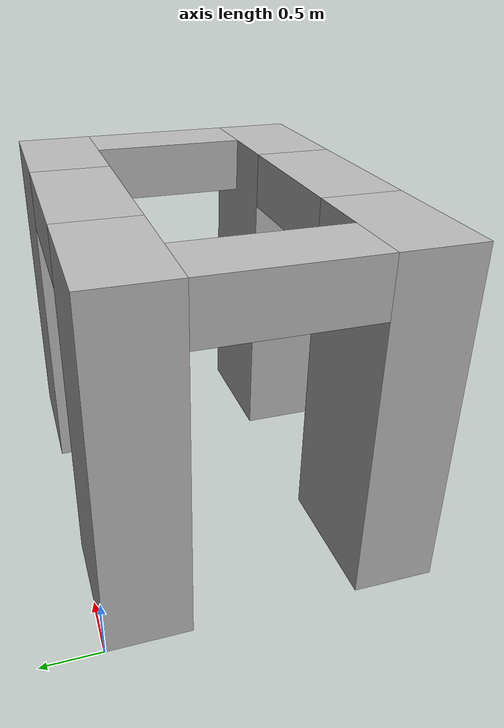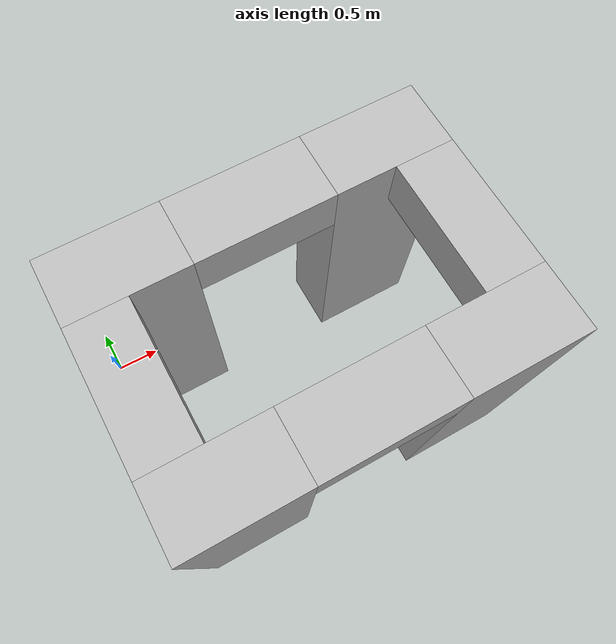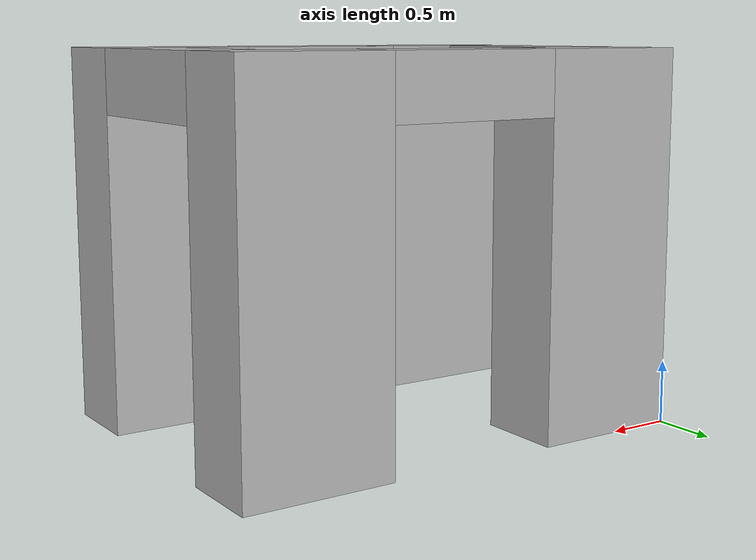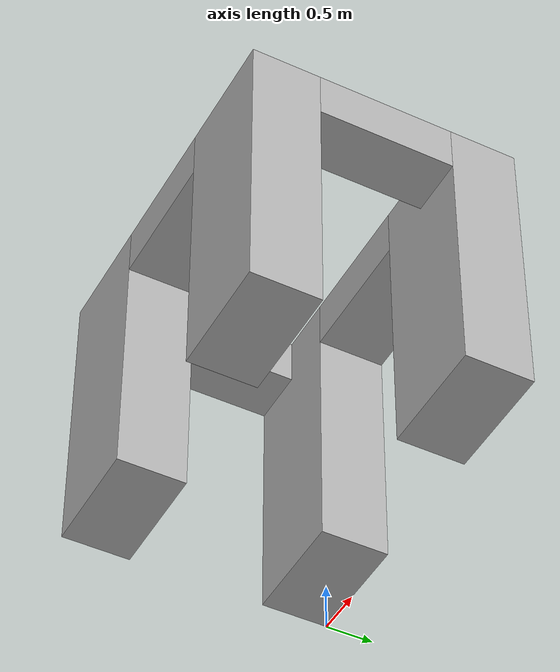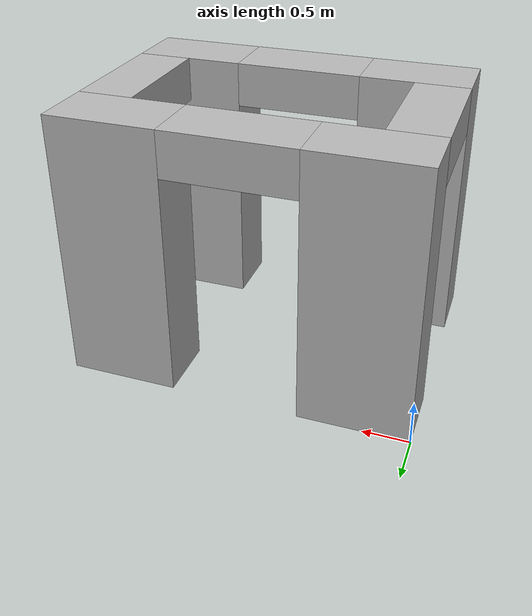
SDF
<?xml version="1.0"?>
<sdf version="1.6">
  <model name="obstacle_11">
    <static>true</static>

    <link name="link_11_1">
      <pose frame=''>0.60 -0.35 1.50 0 -0 0</pose>
      <collision name="body_collision">
        <geometry>
          <box>
            <size>1.20 0.70 3.00</size>
          </box>
        </geometry>
      </collision>

      <visual name="visual_11_1">
	<pose frame=''>0 0 0 0 -0 0</pose>
        <geometry>
          <box>
            <size>1.20 0.70 3.00</size>
          </box>
	</geometry>

	    <material>
		<script>
			<uri>model://obstacle_11/materials/scripts</uri>
			<uri>model://obstacle_11/materials/textures</uri>
			<name>repeated_11</name>
		</script>
	    </material>

      </visual>

    </link>

    <link name="link_11_2">
      <pose frame=''>3.20 -0.35 1.50 0 -0 0</pose>
      <collision name="body_collision">
        <geometry>
          <box>
            <size>1.20 0.70 3.00</size>
          </box>
        </geometry>
      </collision>

      <visual name="visual_11_2">
	<pose frame=''>0 0 0 0 -0 0</pose>
        <geometry>
          <box>
            <size>1.20 0.70 3.00</size>
          </box>
	</geometry>

	    <material>
		<script>
			<uri>model://obstacle_11/materials/scripts</uri>
			<uri>model://obstacle_11/materials/textures</uri>
			<name>repeated_11</name>
		</script>
	    </material>

      </visual>

    </link>

    <link name="link_11_3">
      <pose frame=''>0.60 -2.45 1.50 0 -0 0</pose>
      <collision name="body_collision">
        <geometry>
          <box>
            <size>1.20 0.70 3.00</size>
          </box>
        </geometry>
      </collision>

      <visual name="visual_11_3">
	<pose frame=''>0 0 0 0 -0 0</pose>
        <geometry>
          <box>
            <size>1.20 0.70 3.00</size>
          </box>
	</geometry>

	    <material>
		<script>
			<uri>model://obstacle_11/materials/scripts</uri>
			<uri>model://obstacle_11/materials/textures</uri>
			<name>repeated_11</name>
		</script>
	    </material>

      </visual>

    </link>

    <link name="link_11_4">
      <pose frame=''>3.20 -2.45 1.50 0 -0 0</pose>
      <collision name="body_collision">
        <geometry>
          <box>
            <size>1.20 0.70 3.00</size>
          </box>
        </geometry>
      </collision>

      <visual name="visual_11_4">
	<pose frame=''>0 0 0 0 -0 0</pose>
        <geometry>
          <box>
            <size>1.20 0.70 3.00</size>
          </box>
	</geometry>

	    <material>
		<script>
			<uri>model://obstacle_11/materials/scripts</uri>
			<uri>model://obstacle_11/materials/textures</uri>
			<name>repeated_11</name>
		</script>
	    </material>

      </visual>

    </link>

    <link name="link_11_5">
      <pose frame=''>1.90 -0.35 2.75 0 -0 0</pose>
      <collision name="body_collision">
        <geometry>
          <box>
            <size>1.40 0.70 0.50</size>
          </box>
        </geometry>
      </collision>

      <visual name="visual_11_5">
	<pose frame=''>0 0 0 0 -0 0</pose>
        <geometry>
          <box>
            <size>1.40 0.70 0.50</size>
          </box>
	</geometry>

	    <material>
		<script>
			<uri>model://obstacle_11/materials/scripts</uri>
			<uri>model://obstacle_11/materials/textures</uri>
			<name>repeated_11</name>
		</script>
	    </material>

      </visual>

    </link>

   <link name="link_11_6">
      <pose frame=''>1.90 -2.45 2.75 0 -0 0</pose>
      <collision name="body_collision">
        <geometry>
          <box>
            <size>1.40 0.70 0.50</size>
          </box>
        </geometry>
      </collision>

      <visual name="visual_11_6">
	<pose frame=''>0 0 0 0 -0 0</pose>
        <geometry>
          <box>
            <size>1.40 0.70 0.50</size>
          </box>
	</geometry>

	    <material>
		<script>
			<uri>model://obstacle_11/materials/scripts</uri>
			<uri>model://obstacle_11/materials/textures</uri>
			<name>repeated_11</name>
		</script>
	    </material>

      </visual>

    </link>

   <link name="link_11_7">
      <pose frame=''>0.3 -1.40 2.75 0 -0 0</pose>
      <collision name="body_collision">
        <geometry>
          <box>
            <size>0.60 1.40 0.50</size>
          </box>
        </geometry>
      </collision>

      <visual name="visual_11_7">
	<pose frame=''>0 0 0 0 -0 0</pose>
        <geometry>
          <box>
            <size>0.60 1.40 0.50</size>
          </box>
	</geometry>

	    <material>
		<script>
			<uri>model://obstacle_11/materials/scripts</uri>
			<uri>model://obstacle_11/materials/textures</uri>
			<name>repeated_11</name>
		</script>
	    </material>

      </visual>

    </link>

   <link name="link_11_8">
      <pose frame=''>3.50 -1.40 2.75 0 -0 0</pose>
      <collision name="body_collision">
        <geometry>
          <box>
            <size>0.60 1.40 0.50</size>
          </box>
        </geometry>
      </collision>

      <visual name="visual_11_8">
	<pose frame=''>0 0 0 0 -0 0</pose>
        <geometry>
          <box>
            <size>0.60 1.40 0.50</size>
          </box>
	</geometry>

	    <material>
		<script>
			<uri>model://obstacle_11/materials/scripts</uri>
			<uri>model://obstacle_11/materials/textures</uri>
			<name>repeated_11</name>
		</script>
	    </material>

      </visual>

    </link>

  </model>
</sdf>
